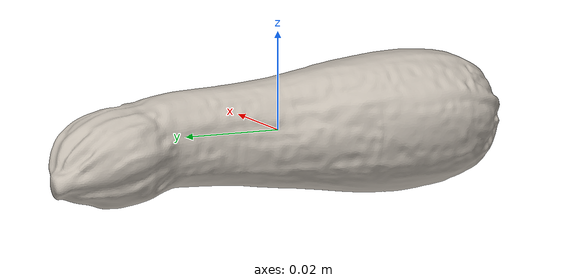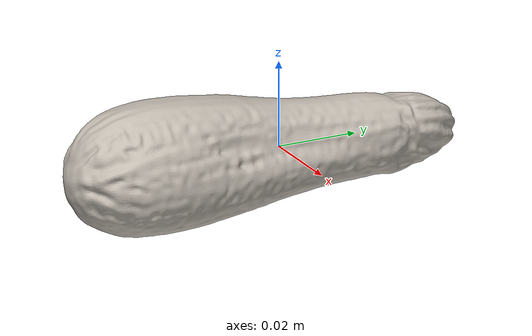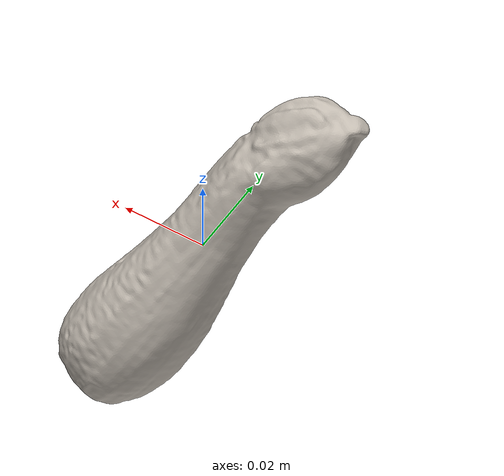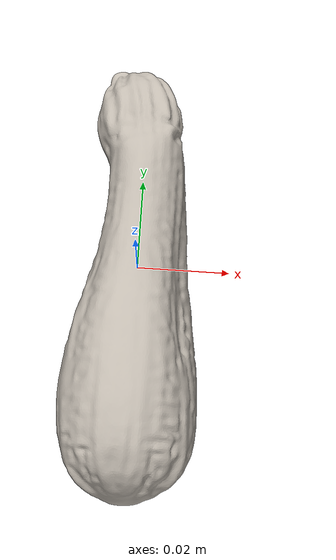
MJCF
<?xml version='1.0' encoding='utf-8'?>
<mujoco model="zucchini_0">
  <asset>
    <texture file="ceramic.png" name="tex-zucchini_0" type="2d" />
    <material name="zucchini_0" reflectance="0.5" texrepeat="1 1" texture="tex-zucchini_0" texuniform="false" />
    <mesh file="visual/model_normalized_0.obj" name="model_normalized_0_vis" scale="0.1 0.1 0.1" refquat="1.0 0.0 0.0 0.0" />
    <mesh file="collision/model_normalized_collision_13.obj" name="model_normalized_collision_13._coll" scale="0.1 0.1 0.1" refquat="1.0 0.0 0.0 0.0" />
    <mesh file="collision/model_normalized_collision_15.obj" name="model_normalized_collision_15._coll" scale="0.1 0.1 0.1" refquat="1.0 0.0 0.0 0.0" />
    <mesh file="collision/model_normalized_collision_10.obj" name="model_normalized_collision_10._coll" scale="0.1 0.1 0.1" refquat="1.0 0.0 0.0 0.0" />
    <mesh file="collision/model_normalized_collision_26.obj" name="model_normalized_collision_26._coll" scale="0.1 0.1 0.1" refquat="1.0 0.0 0.0 0.0" />
    <mesh file="collision/model_normalized_collision_25.obj" name="model_normalized_collision_25._coll" scale="0.1 0.1 0.1" refquat="1.0 0.0 0.0 0.0" />
    <mesh file="collision/model_normalized_collision_5.obj" name="model_normalized_collision_5._coll" scale="0.1 0.1 0.1" refquat="1.0 0.0 0.0 0.0" />
    <mesh file="collision/model_normalized_collision_31.obj" name="model_normalized_collision_31._coll" scale="0.1 0.1 0.1" refquat="1.0 0.0 0.0 0.0" />
    <mesh file="collision/model_normalized_collision_3.obj" name="model_normalized_collision_3._coll" scale="0.1 0.1 0.1" refquat="1.0 0.0 0.0 0.0" />
    <mesh file="collision/model_normalized_collision_14.obj" name="model_normalized_collision_14._coll" scale="0.1 0.1 0.1" refquat="1.0 0.0 0.0 0.0" />
    <mesh file="collision/model_normalized_collision_28.obj" name="model_normalized_collision_28._coll" scale="0.1 0.1 0.1" refquat="1.0 0.0 0.0 0.0" />
    <mesh file="collision/model_normalized_collision_11.obj" name="model_normalized_collision_11._coll" scale="0.1 0.1 0.1" refquat="1.0 0.0 0.0 0.0" />
    <mesh file="collision/model_normalized_collision_29.obj" name="model_normalized_collision_29._coll" scale="0.1 0.1 0.1" refquat="1.0 0.0 0.0 0.0" />
    <mesh file="collision/model_normalized_collision_24.obj" name="model_normalized_collision_24._coll" scale="0.1 0.1 0.1" refquat="1.0 0.0 0.0 0.0" />
    <mesh file="collision/model_normalized_collision_1.obj" name="model_normalized_collision_1._coll" scale="0.1 0.1 0.1" refquat="1.0 0.0 0.0 0.0" />
    <mesh file="collision/model_normalized_collision_0.obj" name="model_normalized_collision_0._coll" scale="0.1 0.1 0.1" refquat="1.0 0.0 0.0 0.0" />
    <mesh file="collision/model_normalized_collision_27.obj" name="model_normalized_collision_27._coll" scale="0.1 0.1 0.1" refquat="1.0 0.0 0.0 0.0" />
    <mesh file="collision/model_normalized_collision_9.obj" name="model_normalized_collision_9._coll" scale="0.1 0.1 0.1" refquat="1.0 0.0 0.0 0.0" />
    <mesh file="collision/model_normalized_collision_19.obj" name="model_normalized_collision_19._coll" scale="0.1 0.1 0.1" refquat="1.0 0.0 0.0 0.0" />
    <mesh file="collision/model_normalized_collision_21.obj" name="model_normalized_collision_21._coll" scale="0.1 0.1 0.1" refquat="1.0 0.0 0.0 0.0" />
    <mesh file="collision/model_normalized_collision_30.obj" name="model_normalized_collision_30._coll" scale="0.1 0.1 0.1" refquat="1.0 0.0 0.0 0.0" />
    <mesh file="collision/model_normalized_collision_20.obj" name="model_normalized_collision_20._coll" scale="0.1 0.1 0.1" refquat="1.0 0.0 0.0 0.0" />
    <mesh file="collision/model_normalized_collision_2.obj" name="model_normalized_collision_2._coll" scale="0.1 0.1 0.1" refquat="1.0 0.0 0.0 0.0" />
    <mesh file="collision/model_normalized_collision_7.obj" name="model_normalized_collision_7._coll" scale="0.1 0.1 0.1" refquat="1.0 0.0 0.0 0.0" />
    <mesh file="collision/model_normalized_collision_22.obj" name="model_normalized_collision_22._coll" scale="0.1 0.1 0.1" refquat="1.0 0.0 0.0 0.0" />
    <mesh file="collision/model_normalized_collision_16.obj" name="model_normalized_collision_16._coll" scale="0.1 0.1 0.1" refquat="1.0 0.0 0.0 0.0" />
    <mesh file="collision/model_normalized_collision_8.obj" name="model_normalized_collision_8._coll" scale="0.1 0.1 0.1" refquat="1.0 0.0 0.0 0.0" />
    <mesh file="collision/model_normalized_collision_6.obj" name="model_normalized_collision_6._coll" scale="0.1 0.1 0.1" refquat="1.0 0.0 0.0 0.0" />
    <mesh file="collision/model_normalized_collision_18.obj" name="model_normalized_collision_18._coll" scale="0.1 0.1 0.1" refquat="1.0 0.0 0.0 0.0" />
    <mesh file="collision/model_normalized_collision_17.obj" name="model_normalized_collision_17._coll" scale="0.1 0.1 0.1" refquat="1.0 0.0 0.0 0.0" />
    <mesh file="collision/model_normalized_collision_12.obj" name="model_normalized_collision_12._coll" scale="0.1 0.1 0.1" refquat="1.0 0.0 0.0 0.0" />
    <mesh file="collision/model_normalized_collision_4.obj" name="model_normalized_collision_4._coll" scale="0.1 0.1 0.1" refquat="1.0 0.0 0.0 0.0" />
    <mesh file="collision/model_normalized_collision_23.obj" name="model_normalized_collision_23._coll" scale="0.1 0.1 0.1" refquat="1.0 0.0 0.0 0.0" />
    <texture type="2d" name="dafb3fb54db3_zucchini__3d_asset__texture_kd" file="visual/dafb3fb54db3_zucchini__3d_asset__texture_kd.png" />
    <material name="Material_0" texture="dafb3fb54db3_zucchini__3d_asset__texture_kd" specular="0.5" shininess="0.5" />
  </asset>
  <default>
    <default class="region">
      <geom group="1" conaffinity="0" contype="0" rgba="0 1 0 0" />
    </default>
  </default>
  <worldbody>
    <body>
      <body name="object">
        <geom solimp="0.998 0.998 0.001" solref="0.001 1" density="100" friction="0.95 0.3 0.1" type="mesh" mesh="model_normalized_0_vis" conaffinity="0" contype="0" group="1" material="Material_0" />
        <geom solimp="0.998 0.998 0.001" solref="0.001 1" density="100" friction="0.95 0.3 0.1" type="mesh" mesh="model_normalized_collision_13._coll" group="0" rgba="0.8 0.8 0.8 0.0" />
        <geom solimp="0.998 0.998 0.001" solref="0.001 1" density="100" friction="0.95 0.3 0.1" type="mesh" mesh="model_normalized_collision_15._coll" group="0" rgba="0.8 0.8 0.8 0.0" />
        <geom solimp="0.998 0.998 0.001" solref="0.001 1" density="100" friction="0.95 0.3 0.1" type="mesh" mesh="model_normalized_collision_10._coll" group="0" rgba="0.8 0.8 0.8 0.0" />
        <geom solimp="0.998 0.998 0.001" solref="0.001 1" density="100" friction="0.95 0.3 0.1" type="mesh" mesh="model_normalized_collision_26._coll" group="0" rgba="0.8 0.8 0.8 0.0" />
        <geom solimp="0.998 0.998 0.001" solref="0.001 1" density="100" friction="0.95 0.3 0.1" type="mesh" mesh="model_normalized_collision_25._coll" group="0" rgba="0.8 0.8 0.8 0.0" />
        <geom solimp="0.998 0.998 0.001" solref="0.001 1" density="100" friction="0.95 0.3 0.1" type="mesh" mesh="model_normalized_collision_5._coll" group="0" rgba="0.8 0.8 0.8 0.0" />
        <geom solimp="0.998 0.998 0.001" solref="0.001 1" density="100" friction="0.95 0.3 0.1" type="mesh" mesh="model_normalized_collision_31._coll" group="0" rgba="0.8 0.8 0.8 0.0" />
        <geom solimp="0.998 0.998 0.001" solref="0.001 1" density="100" friction="0.95 0.3 0.1" type="mesh" mesh="model_normalized_collision_3._coll" group="0" rgba="0.8 0.8 0.8 0.0" />
        <geom solimp="0.998 0.998 0.001" solref="0.001 1" density="100" friction="0.95 0.3 0.1" type="mesh" mesh="model_normalized_collision_14._coll" group="0" rgba="0.8 0.8 0.8 0.0" />
        <geom solimp="0.998 0.998 0.001" solref="0.001 1" density="100" friction="0.95 0.3 0.1" type="mesh" mesh="model_normalized_collision_28._coll" group="0" rgba="0.8 0.8 0.8 0.0" />
        <geom solimp="0.998 0.998 0.001" solref="0.001 1" density="100" friction="0.95 0.3 0.1" type="mesh" mesh="model_normalized_collision_11._coll" group="0" rgba="0.8 0.8 0.8 0.0" />
        <geom solimp="0.998 0.998 0.001" solref="0.001 1" density="100" friction="0.95 0.3 0.1" type="mesh" mesh="model_normalized_collision_29._coll" group="0" rgba="0.8 0.8 0.8 0.0" />
        <geom solimp="0.998 0.998 0.001" solref="0.001 1" density="100" friction="0.95 0.3 0.1" type="mesh" mesh="model_normalized_collision_24._coll" group="0" rgba="0.8 0.8 0.8 0.0" />
        <geom solimp="0.998 0.998 0.001" solref="0.001 1" density="100" friction="0.95 0.3 0.1" type="mesh" mesh="model_normalized_collision_1._coll" group="0" rgba="0.8 0.8 0.8 0.0" />
        <geom solimp="0.998 0.998 0.001" solref="0.001 1" density="100" friction="0.95 0.3 0.1" type="mesh" mesh="model_normalized_collision_0._coll" group="0" rgba="0.8 0.8 0.8 0.0" />
        <geom solimp="0.998 0.998 0.001" solref="0.001 1" density="100" friction="0.95 0.3 0.1" type="mesh" mesh="model_normalized_collision_27._coll" group="0" rgba="0.8 0.8 0.8 0.0" />
        <geom solimp="0.998 0.998 0.001" solref="0.001 1" density="100" friction="0.95 0.3 0.1" type="mesh" mesh="model_normalized_collision_9._coll" group="0" rgba="0.8 0.8 0.8 0.0" />
        <geom solimp="0.998 0.998 0.001" solref="0.001 1" density="100" friction="0.95 0.3 0.1" type="mesh" mesh="model_normalized_collision_19._coll" group="0" rgba="0.8 0.8 0.8 0.0" />
        <geom solimp="0.998 0.998 0.001" solref="0.001 1" density="100" friction="0.95 0.3 0.1" type="mesh" mesh="model_normalized_collision_21._coll" group="0" rgba="0.8 0.8 0.8 0.0" />
        <geom solimp="0.998 0.998 0.001" solref="0.001 1" density="100" friction="0.95 0.3 0.1" type="mesh" mesh="model_normalized_collision_30._coll" group="0" rgba="0.8 0.8 0.8 0.0" />
        <geom solimp="0.998 0.998 0.001" solref="0.001 1" density="100" friction="0.95 0.3 0.1" type="mesh" mesh="model_normalized_collision_20._coll" group="0" rgba="0.8 0.8 0.8 0.0" />
        <geom solimp="0.998 0.998 0.001" solref="0.001 1" density="100" friction="0.95 0.3 0.1" type="mesh" mesh="model_normalized_collision_2._coll" group="0" rgba="0.8 0.8 0.8 0.0" />
        <geom solimp="0.998 0.998 0.001" solref="0.001 1" density="100" friction="0.95 0.3 0.1" type="mesh" mesh="model_normalized_collision_7._coll" group="0" rgba="0.8 0.8 0.8 0.0" />
        <geom solimp="0.998 0.998 0.001" solref="0.001 1" density="100" friction="0.95 0.3 0.1" type="mesh" mesh="model_normalized_collision_22._coll" group="0" rgba="0.8 0.8 0.8 0.0" />
        <geom solimp="0.998 0.998 0.001" solref="0.001 1" density="100" friction="0.95 0.3 0.1" type="mesh" mesh="model_normalized_collision_16._coll" group="0" rgba="0.8 0.8 0.8 0.0" />
        <geom solimp="0.998 0.998 0.001" solref="0.001 1" density="100" friction="0.95 0.3 0.1" type="mesh" mesh="model_normalized_collision_8._coll" group="0" rgba="0.8 0.8 0.8 0.0" />
        <geom solimp="0.998 0.998 0.001" solref="0.001 1" density="100" friction="0.95 0.3 0.1" type="mesh" mesh="model_normalized_collision_6._coll" group="0" rgba="0.8 0.8 0.8 0.0" />
        <geom solimp="0.998 0.998 0.001" solref="0.001 1" density="100" friction="0.95 0.3 0.1" type="mesh" mesh="model_normalized_collision_18._coll" group="0" rgba="0.8 0.8 0.8 0.0" />
        <geom solimp="0.998 0.998 0.001" solref="0.001 1" density="100" friction="0.95 0.3 0.1" type="mesh" mesh="model_normalized_collision_17._coll" group="0" rgba="0.8 0.8 0.8 0.0" />
        <geom solimp="0.998 0.998 0.001" solref="0.001 1" density="100" friction="0.95 0.3 0.1" type="mesh" mesh="model_normalized_collision_12._coll" group="0" rgba="0.8 0.8 0.8 0.0" />
        <geom solimp="0.998 0.998 0.001" solref="0.001 1" density="100" friction="0.95 0.3 0.1" type="mesh" mesh="model_normalized_collision_4._coll" group="0" rgba="0.8 0.8 0.8 0.0" />
        <geom solimp="0.998 0.998 0.001" solref="0.001 1" density="100" friction="0.95 0.3 0.1" type="mesh" mesh="model_normalized_collision_23._coll" group="0" rgba="0.8 0.8 0.8 0.0" />
        <geom class="region" name="reg_bbox" type="box" pos="-0.00022486050000000007 0.0 -0.00034391049999999996" size="0.014926655 0.050757577 0.0151515155" />
      </body>
    <site rgba="0 0 0 0" size="0.005" pos="0 0 -0.015495426" name="bottom_site" /><site rgba="0 0 0 0" size="0.005" pos="0 0 0.014807605" name="top_site" /><site rgba="0 0 0 0" size="0.005" pos="0.050757577 0.050757577 0" name="horizontal_radius_site" /></body>
  </worldbody>
</mujoco>
